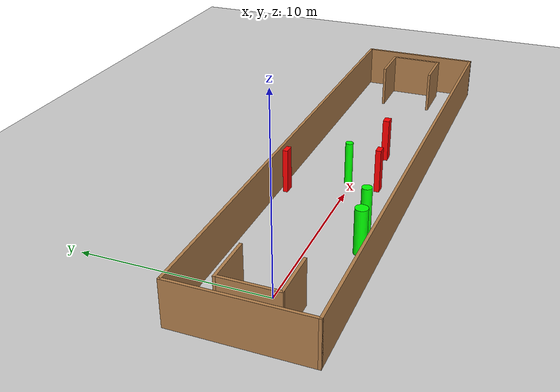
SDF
<sdf version="1.7">
 <world name="default">
  <light name="sun" type="directional">
   <pose>0 0 10 0 -0 0</pose>
   <diffuse>0.8 0.8 0.8 1</diffuse>
   <specular>0.2 0.2 0.2 1</specular>
   <attenuation>
    <range>1000</range>
    <constant>0.9</constant>
    <linear>0.01</linear>
    <quadratic>0.001</quadratic>
   </attenuation>
   <direction>-0.5 0.1 -0.9</direction>
   <spot><inner_angle>0</inner_angle><outer_angle>0</outer_angle><falloff>0</falloff></spot>
  </light>
  <model name="ground_plane">
   <static>1</static>
   <link name="link">
    <collision name="collision">
     <geometry><plane><normal>0 0 1</normal><size>100 100</size></plane></geometry>
     <surface>
      <contact><collide_bitmask>65535</collide_bitmask></contact>
      <friction><ode><mu>100</mu><mu2>50</mu2></ode></friction>
     </surface>
    </collision>
    <visual name="visual">
     <cast_shadows>0</cast_shadows>
     <geometry><plane><normal>0 0 1</normal><size>100 100</size></plane></geometry>
     <material>
      <script><uri>file://media/materials/scripts/gazebo.material</uri><name>Gazebo/Grey</name></script>
     </material>
    </visual>
   </link>
  </model>
  <gravity>0 0 -9.8</gravity>
  <magnetic_field>6e-06 2.3e-05 -4.2e-05</magnetic_field>
  <atmosphere type="adiabatic"/>
  <physics type="ode">
   <max_step_size>0.001</max_step_size>
   <real_time_factor>1</real_time_factor>
   <real_time_update_rate>1000</real_time_update_rate>
  </physics>
  <scene><ambient>0.4 0.4 0.4 1</ambient><background>0.7 0.7 0.7 1</background><shadows>1</shadows></scene>
  <spherical_coordinates>
   <surface_model>EARTH_WGS84</surface_model>
   <latitude_deg>0</latitude_deg>
   <longitude_deg>0</longitude_deg>
   <elevation>0</elevation>
   <heading_deg>0</heading_deg>
  </spherical_coordinates>
  <model name="my_base_walls">
   <link name="Wall_0">
    <collision name="Wall_0_Collision">
     <geometry><box><size>7.15 0.15 2.5</size></box></geometry>
     <pose>0 0 1.25 0 -0 0</pose>
    </collision>
    <visual name="Wall_0_Visual">
     <pose>0 0 1.25 0 -0 0</pose>
     <geometry><box><size>7.15 0.15 2.5</size></box></geometry>
     <material>
      <script><uri>file://media/materials/scripts/gazebo.material</uri><name>Gazebo/Wood</name></script>
      <ambient>1 1 1 1</ambient>
     </material>
     <meta><layer>0</layer></meta>
    </visual>
    <pose>-15 0 0 0 -0 1.5708</pose>
   </link>
   <link name="Wall_10">
    <collision name="Wall_10_Collision">
     <geometry><box><size>2.65 0.15 2.5</size></box></geometry>
     <pose>0 0 1.25 0 -0 0</pose>
    </collision>
    <visual name="Wall_10_Visual">
     <pose>0 0 1.25 0 -0 0</pose>
     <geometry><box><size>2.65 0.15 2.5</size></box></geometry>
     <material>
      <script><uri>file://media/materials/scripts/gazebo.material</uri><name>Gazebo/Wood</name></script>
      <ambient>1 1 1 1</ambient>
     </material>
     <meta><layer>0</layer></meta>
    </visual>
    <pose>-12.75 -1.5 0 0 -0 0</pose>
   </link>
   <link name="Wall_12">
    <collision name="Wall_12_Collision">
     <geometry><box><size>2.65 0.15 2.5</size></box></geometry>
     <pose>0 0 1.25 0 -0 0</pose>
    </collision>
    <visual name="Wall_12_Visual">
     <pose>0 0 1.25 0 -0 0</pose>
     <geometry><box><size>2.65 0.15 2.5</size></box></geometry>
     <material>
      <script><uri>file://media/materials/scripts/gazebo.material</uri><name>Gazebo/Wood</name></script>
      <ambient>1 1 1 1</ambient>
     </material>
     <meta><layer>0</layer></meta>
    </visual>
    <pose>-12.75 1.5 0 0 -0 0</pose>
   </link>
   <link name="Wall_14">
    <collision name="Wall_14_Collision">
     <geometry><box><size>3.15 0.15 2.5</size></box></geometry>
     <pose>0 0 1.25 0 -0 0</pose>
    </collision>
    <visual name="Wall_14_Visual">
     <pose>0 0 1.25 0 -0 0</pose>
     <geometry><box><size>3.15 0.15 2.5</size></box></geometry>
     <material>
      <script><uri>file://media/materials/scripts/gazebo.material</uri><name>Gazebo/Wood</name></script>
      <ambient>1 1 1 1</ambient>
     </material>
     <meta><layer>0</layer></meta>
    </visual>
    <pose>14 0 0 0 -0 -1.5708</pose>
   </link>
   <link name="Wall_15">
    <collision name="Wall_15_Collision">
     <geometry><box><size>2.65 0.15 2.5</size></box></geometry>
     <pose>0 0 1.25 0 -0 0</pose>
    </collision>
    <visual name="Wall_15_Visual">
     <pose>0 0 1.25 0 -0 0</pose>
     <geometry><box><size>2.65 0.15 2.5</size></box></geometry>
     <material>
      <script><uri>file://media/materials/scripts/gazebo.material</uri><name>Gazebo/Wood</name></script>
      <ambient>1 1 1 1</ambient>
     </material>
     <meta><layer>0</layer></meta>
    </visual>
    <pose>12.75 -1.5 0 0 -0 3.14159</pose>
   </link>
   <link name="Wall_17">
    <collision name="Wall_17_Collision">
     <geometry><box><size>2.65 0.15 2.5</size></box></geometry>
     <pose>0 0 1.25 0 -0 0</pose>
    </collision>
    <visual name="Wall_17_Visual">
     <pose>0 0 1.25 0 -0 0</pose>
     <geometry><box><size>2.65 0.15 2.5</size></box></geometry>
     <material>
      <script><uri>file://media/materials/scripts/gazebo.material</uri><name>Gazebo/Wood</name></script>
      <ambient>1 1 1 1</ambient>
     </material>
     <meta><layer>0</layer></meta>
    </visual>
    <pose>12.75 1.5 0 0 -0 3.14159</pose>
   </link>
   <link name="Wall_2">
    <collision name="Wall_2_Collision">
     <geometry><box><size>30.15 0.15 2.5</size></box></geometry>
     <pose>0 0 1.25 0 -0 0</pose>
    </collision>
    <visual name="Wall_2_Visual">
     <pose>0 0 1.25 0 -0 0</pose>
     <geometry><box><size>30.15 0.15 2.5</size></box></geometry>
     <material>
      <script><uri>file://media/materials/scripts/gazebo.material</uri><name>Gazebo/Wood</name></script>
      <ambient>1 1 1 1</ambient>
     </material>
     <meta><layer>0</layer></meta>
    </visual>
    <pose>-0 -3.5 0 0 -0 0</pose>
   </link>
   <link name="Wall_4">
    <collision name="Wall_4_Collision">
     <geometry><box><size>30.15 0.15 2.5</size></box></geometry>
     <pose>0 0 1.25 0 -0 0</pose>
    </collision>
    <visual name="Wall_4_Visual">
     <pose>0 0 1.25 0 -0 0</pose>
     <geometry><box><size>30.15 0.15 2.5</size></box></geometry>
     <material>
      <script><uri>file://media/materials/scripts/gazebo.material</uri><name>Gazebo/Wood</name></script>
      <ambient>1 1 1 1</ambient>
     </material>
     <meta><layer>0</layer></meta>
    </visual>
    <pose>-0 3.5 0 0 -0 0</pose>
   </link>
   <link name="Wall_6">
    <collision name="Wall_6_Collision">
     <geometry><box><size>7.15 0.15 2.5</size></box></geometry>
     <pose>0 0 1.25 0 -0 0</pose>
    </collision>
    <visual name="Wall_6_Visual">
     <pose>0 0 1.25 0 -0 0</pose>
     <geometry><box><size>7.15 0.15 2.5</size></box></geometry>
     <material>
      <script><uri>file://media/materials/scripts/gazebo.material</uri><name>Gazebo/Wood</name></script>
      <ambient>1 1 1 1</ambient>
     </material>
     <meta><layer>0</layer></meta>
    </visual>
    <pose>15 0 0 0 -0 -1.5708</pose>
   </link>
   <link name="Wall_9">
    <collision name="Wall_9_Collision">
     <geometry><box><size>3.15 0.15 2.5</size></box></geometry>
     <pose>0 0 1.25 0 -0 0</pose>
    </collision>
    <visual name="Wall_9_Visual">
     <pose>0 0 1.25 0 -0 0</pose>
     <geometry><box><size>3.15 0.15 2.5</size></box></geometry>
     <material>
      <script><uri>file://media/materials/scripts/gazebo.material</uri><name>Gazebo/Wood</name></script>
      <ambient>1 1 1 1</ambient>
     </material>
     <meta><layer>0</layer></meta>
    </visual>
    <pose>-14 0 0 0 -0 -1.5708</pose>
   </link>
   <static>1</static>
   <pose>11.5 0 0 0 -0 0</pose>
  </model>
  <model name="cylinder1">
   <static>1</static>
   <link name="link">
    <inertial>
     <mass>1</mass>
     <inertia><ixx>0.5</ixx><ixy>0</ixy><ixz>0</ixz><iyy>0.5</iyy><iyz>0</iyz><izz>1</izz></inertia>
    </inertial>
    <collision name="collision">
     <geometry><cylinder><radius>0.21622490150851195</radius><length>2.5</length></cylinder></geometry>
    </collision>
    <visual name="visual">
     <geometry><cylinder><radius>0.21622490150851195</radius><length>2.5</length></cylinder></geometry>
     <material>
      <ambient>0 1 0 1</ambient>
      <diffuse>0 1 0 1</diffuse>
      <specular>0.1 0.1 0.1 1</specular>
      <emissive>0 0 0 0</emissive>
     </material>
    </visual>
   </link>
   <pose>11.323248729294788 0.21060607212690252 1.25 0 0 0</pose>
  </model>
  <model name="cylinder2">
   <static>1</static>
   <link name="link">
    <inertial>
     <mass>1</mass>
     <inertia><ixx>0.5</ixx><ixy>0</ixy><ixz>0</ixz><iyy>0.5</iyy><iyz>0</iyz><izz>1</izz></inertia>
    </inertial>
    <collision name="collision">
     <geometry><cylinder><radius>0.2770752736179496</radius><length>2.5</length></cylinder></geometry>
    </collision>
    <visual name="visual">
     <geometry><cylinder><radius>0.2770752736179496</radius><length>2.5</length></cylinder></geometry>
     <material>
      <ambient>0 1 0 1</ambient>
      <diffuse>0 1 0 1</diffuse>
      <specular>0.1 0.1 0.1 1</specular>
      <emissive>0 0 0 0</emissive>
     </material>
    </visual>
   </link>
   <pose>6.895430381598542 -2.1426579471824656 1.25 0 0 0</pose>
  </model>
  <model name="cylinder3">
   <static>1</static>
   <link name="link">
    <inertial>
     <mass>1</mass>
     <inertia><ixx>0.5</ixx><ixy>0</ixy><ixz>0</ixz><iyy>0.5</iyy><iyz>0</iyz><izz>1</izz></inertia>
    </inertial>
    <collision name="collision">
     <geometry><cylinder><radius>0.3388807733393749</radius><length>2.5</length></cylinder></geometry>
    </collision>
    <visual name="visual">
     <geometry><cylinder><radius>0.3388807733393749</radius><length>2.5</length></cylinder></geometry>
     <material>
      <ambient>0 1 0 1</ambient>
      <diffuse>0 1 0 1</diffuse>
      <specular>0.1 0.1 0.1 1</specular>
      <emissive>0 0 0 0</emissive>
     </material>
    </visual>
   </link>
   <pose>4.889425442259087 -2.491822568625704 1.25 0 0 0</pose>
  </model>
  <model name="box1">
   <static>1</static>
   <link name="link">
    <inertial>
     <mass>1</mass>
     <inertia><ixx>0.083</ixx><ixy>0</ixy><ixz>0</ixz><iyy>0.083</iyy><iyz>0</iyz><izz>0.083</izz></inertia>
    </inertial>
    <collision name="collision">
     <geometry><box><size>0.533634842204317 0.36471249089457336 2.5</size></box></geometry>
    </collision>
    <visual name="visual">
     <geometry><box><size>0.533634842204317 0.36471249089457336 2.5</size></box></geometry>
     <material>
      <ambient>1 0 0 1</ambient>
      <diffuse>1 0 0 1</diffuse>
      <specular>0.1 0.1 0.1 1</specular>
      <emissive>0 0 0 0</emissive>
     </material>
    </visual>
    <sensor name="my_contact" type="contact">
     <contact><collision>box_collision</collision><topic>__default_topic__</topic></contact>
    </sensor>
   </link>
   <pose>15.04642190221849 -0.8763642729160268 1.25 0 0 0</pose>
  </model>
  <model name="box2">
   <static>1</static>
   <link name="link">
    <inertial>
     <mass>1</mass>
     <inertia><ixx>0.083</ixx><ixy>0</ixy><ixz>0</ixz><iyy>0.083</iyy><iyz>0</iyz><izz>0.083</izz></inertia>
    </inertial>
    <collision name="collision">
     <geometry><box><size>0.5702128192460458 0.27086125013603624 2.5</size></box></geometry>
    </collision>
    <visual name="visual">
     <geometry><box><size>0.5702128192460458 0.27086125013603624 2.5</size></box></geometry>
     <material>
      <ambient>1 0 0 1</ambient>
      <diffuse>1 0 0 1</diffuse>
      <specular>0.1 0.1 0.1 1</specular>
      <emissive>0 0 0 0</emissive>
     </material>
    </visual>
    <sensor name="my_contact" type="contact">
     <contact><collision>box_collision</collision><topic>__default_topic__</topic></contact>
    </sensor>
   </link>
   <pose>9.396534141939162 3.1026778419011913 1.25 0 0 0</pose>
  </model>
  <model name="box3">
   <static>1</static>
   <link name="link">
    <inertial>
     <mass>1</mass>
     <inertia><ixx>0.083</ixx><ixy>0</ixy><ixz>0</ixz><iyy>0.083</iyy><iyz>0</iyz><izz>0.083</izz></inertia>
    </inertial>
    <collision name="collision">
     <geometry><box><size>0.5145030438651845 0.2994549571128164 2.5</size></box></geometry>
    </collision>
    <visual name="visual">
     <geometry><box><size>0.5145030438651845 0.2994549571128164 2.5</size></box></geometry>
     <material>
      <ambient>1 0 0 1</ambient>
      <diffuse>1 0 0 1</diffuse>
      <specular>0.1 0.1 0.1 1</specular>
      <emissive>0 0 0 0</emissive>
     </material>
    </visual>
    <sensor name="my_contact" type="contact">
     <contact><collision>box_collision</collision><topic>__default_topic__</topic></contact>
    </sensor>
   </link>
   <pose>11.175216714853244 -1.5360942812500906 1.25 0 0 0</pose>
  </model>
 </world>
</sdf>
